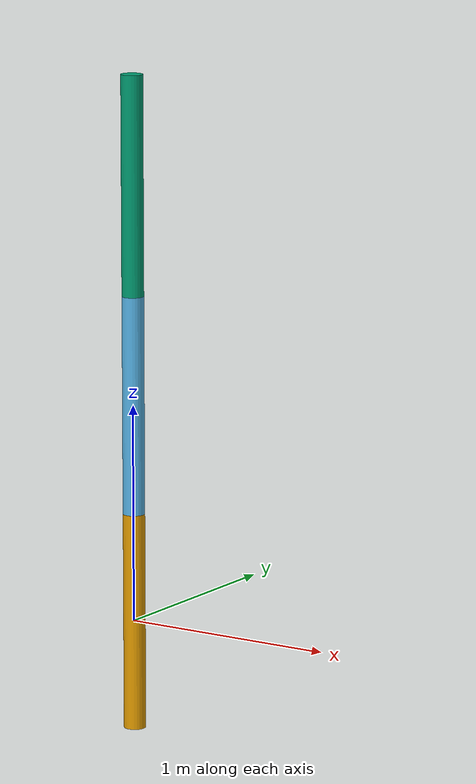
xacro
<?xml version="1.0"?>
<robot name="champi_arm" xmlns:xacro="http://www.ros.org/wiki/xacro">

  <!-- Link 1 -->
  <link name="link1">
    <visual>
      <geometry>
        <cylinder length="1" radius="0.05"/>
      </geometry>
    </visual>
  </link>

  <!-- Link 2 -->
  <link name="link2">
    <visual>
      <geometry>
        <cylinder length="1" radius="0.05"/>
      </geometry>
    </visual>
  </link>

  <!-- Link 3 -->
  <link name="link3">
    <visual>
      <geometry>
        <cylinder length="1" radius="0.05"/>
      </geometry>
    </visual>
  </link>

  <!-- Joint1 -->
  <joint name="joint1" type="revolute">
    <parent link="link1"/>
    <child link="link2"/>
    <origin xyz="0 0 1" rpy="0 0 0"/>
    <axis xyz="0 1 0"/>
    <limit lower="-1.57" upper="1.57" effort="100.0" velocity="0.5"/>
  </joint>

  <!-- Joint2 -->
  <joint name="joint2" type="revolute">
    <parent link="link2"/>
    <child link="link3"/>
    <origin xyz="0 0 1" rpy="0 0 0"/>
    <axis xyz="0 1 0"/>
    <limit lower="-1.57" upper="1.57" effort="100.0" velocity="0.5"/>
  </joint>

  <ros2_control name="dynamixel1" type="system">
      <hardware>
        <plugin>dynamixel_hardware/DynamixelHardware</plugin>
        <param name="usb_port">/dev/ttyUSB0</param>
        <param name="baud_rate">57600</param>
      </hardware>
      <joint name="joint1">
        <param name="id">13</param>
        <command_interface name="position"/>
        <state_interface name="position"/>
        <state_interface name="effort"/>
      </joint>
      <joint name="joint2">
        <param name="id">11</param>
        <command_interface name="position"/>
        <state_interface name="position"/>
        <state_interface name="effort"/>
      </joint>

    </ros2_control>

</robot>
